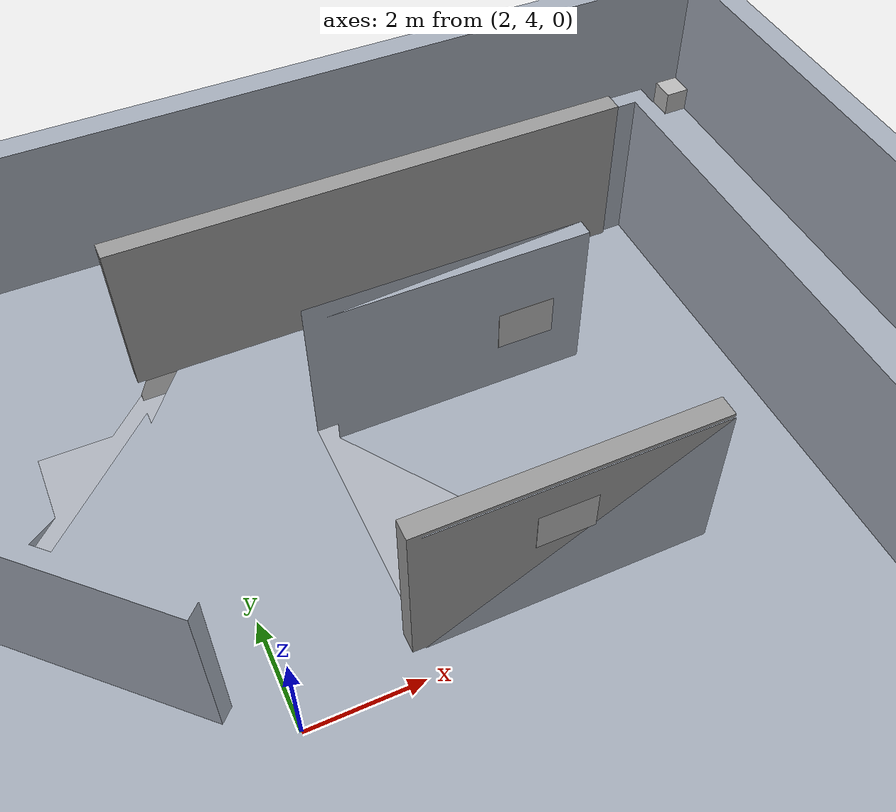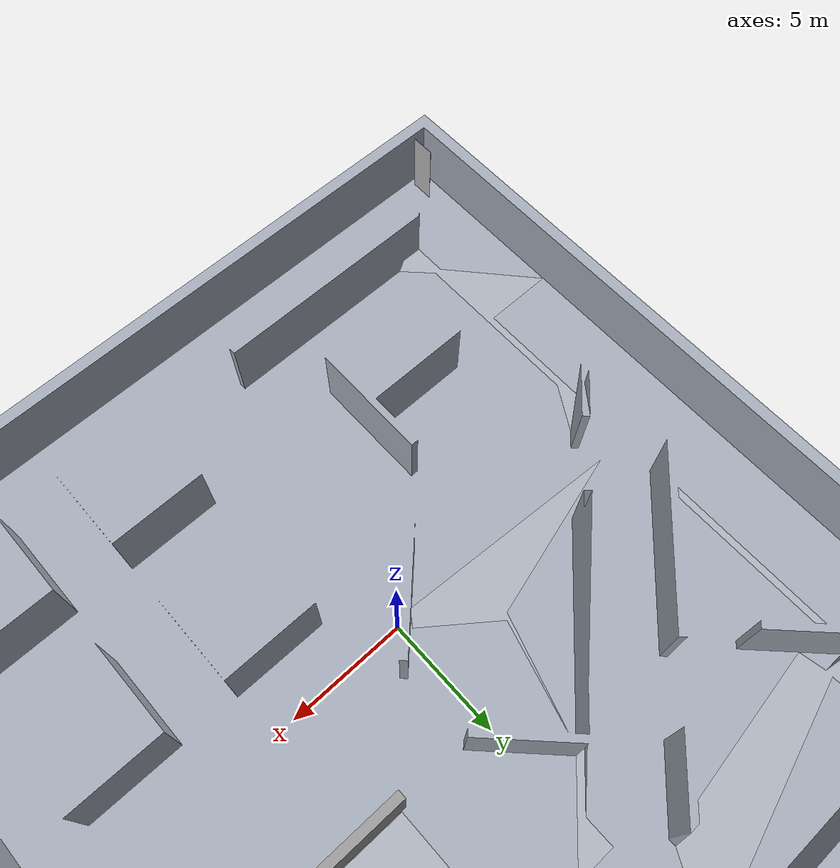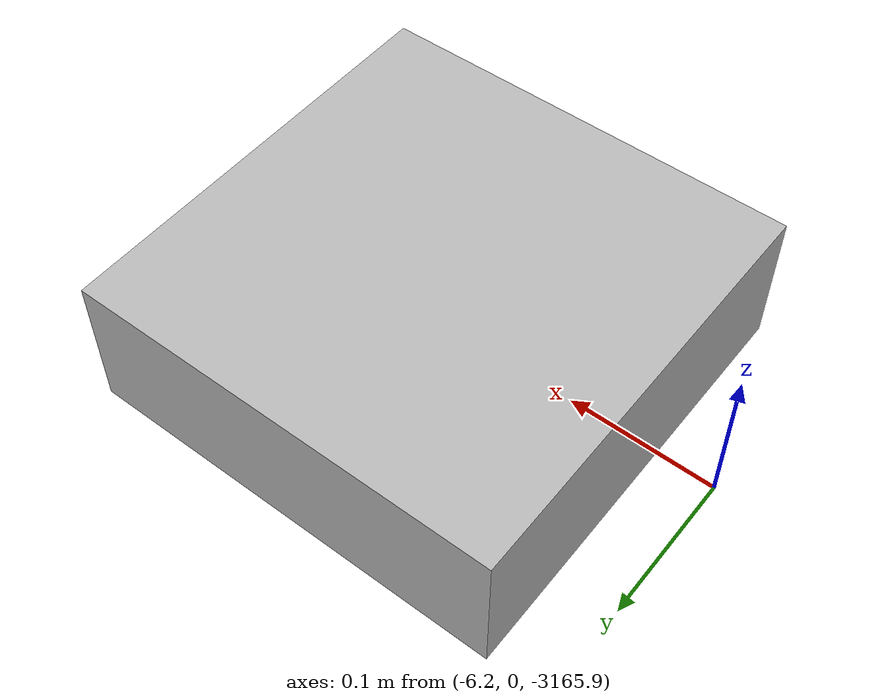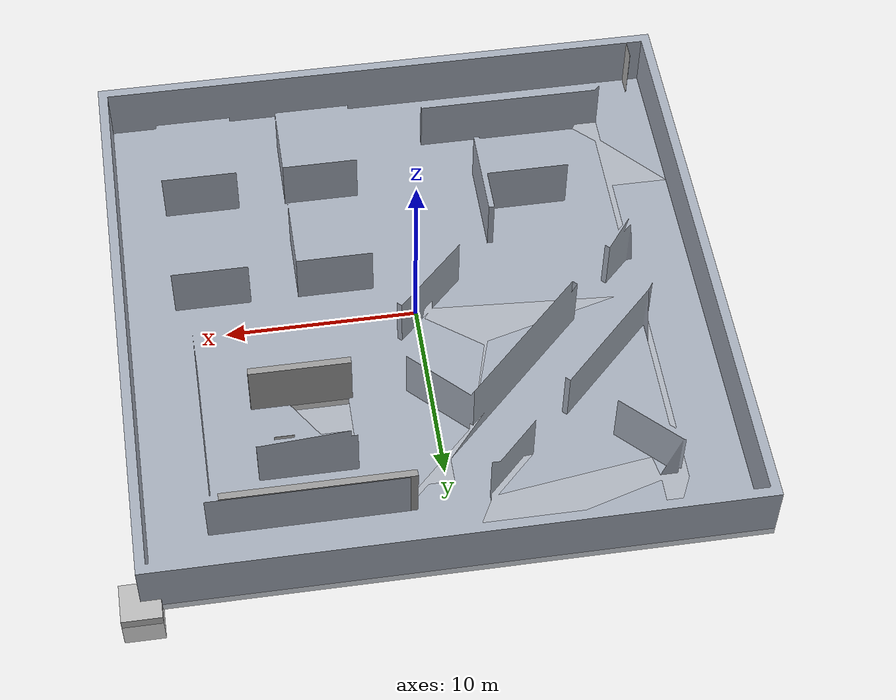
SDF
<sdf version="1.7">
 <world name="default">
  <light name="sun" type="directional">
   <pose>0 0 10 0 -0 0</pose>
   <diffuse>0.8 0.8 0.8 1</diffuse>
   <specular>0.2 0.2 0.2 1</specular>
   <attenuation>
    <range>1000</range>
    <constant>0.9</constant>
    <linear>0.01</linear>
    <quadratic>0.001</quadratic>
   </attenuation>
   <direction>-0.5 0.1 -0.9</direction>
   <spot><inner_angle>0</inner_angle><outer_angle>0</outer_angle><falloff>0</falloff></spot>
  </light>
  <model name="ground_plane">
   <static>1</static>
   <link name="link">
    <collision name="collision">
     <geometry><plane><normal>0 0 1</normal><size>100 100</size></plane></geometry>
     <surface>
      <contact><collide_bitmask>65535</collide_bitmask></contact>
      <friction><ode><mu>100</mu><mu2>50</mu2></ode></friction>
     </surface>
    </collision>
    <visual name="visual">
     <cast_shadows>0</cast_shadows>
     <geometry><plane><normal>0 0 1</normal><size>100 100</size></plane></geometry>
     <material>
      <script><uri>file://media/materials/scripts/gazebo.material</uri><name>Gazebo/Grey</name></script>
     </material>
    </visual>
   </link>
  </model>
  <model name="complex_office_map">
   <static>1</static>
   <pose>15.5 15.5 -0.5 0 0 -1.5708</pose>
   <link name="map_link">
    <visual name="map_visual">
     <geometry>
      <mesh>
       <uri>file:///root/catkin_ws/src/FALCON/uav_simulator/map_render/resource/untitled_v1.dae</uri>
       <scale>1 1 1</scale>
      </mesh>
     </geometry>
    </visual>
   </link>
  </model>
  <model name="gz_uav">
   <static>0</static>
   <link name="base_link">
    <visual name="body_vis"><geometry><box><size>0.3 0.3 0.1</size></box></geometry></visual>
    <sensor name="rgb_camera" type="camera">
     <always_on>1</always_on>
     <update_rate>15</update_rate>
     <camera>
      <horizontal_fov>1.047</horizontal_fov>
      <image><width>640</width><height>480</height><format>R8G8B8</format></image>
      <clip><near>0.05</near><far>50</far></clip>
     </camera>
     <plugin name="gazebo_ros_camera" filename="libgazebo_ros_camera.so">
      <cameraName>camera</cameraName>
      <frameName>camera_link</frameName>
      <imageTopicName>image_raw</imageTopicName>
      <cameraInfoTopicName>camera_info</cameraInfoTopicName>
     </plugin>
    </sensor>
    <inertial>
     <inertia><ixx>1</ixx><ixy>0</ixy><ixz>0</ixz><iyy>1</iyy><iyz>0</iyz><izz>1</izz></inertia>
     <mass>1</mass>
    </inertial>
   </link>
   <pose>-6 0 -3165.89 0 -0 0</pose>
  </model>
  <model name="poster2">
   <static>1</static>
   <link name="poster_link">
    <visual name="poster_visual">
     <geometry><box><size>0.01 1 0.75</size></box></geometry>
     <material>
      <script>
       <uri>file:///root/catkin_ws/src/gazebo/poster_plane 1/materials/scripts</uri>
       <uri>file:///root/catkin_ws/src/gazebo/poster_plane 1/materials/textures</uri>
       <name>Poster/Poster1</name>
      </script>
     </material>
    </visual>
   </link>
   <pose>6.5 4.5 2 0 -0 1.57</pose>
  </model>
  <model name="poster3">
   <static>1</static>
   <link name="poster_link">
    <visual name="poster_visual">
     <geometry><box><size>0.01 1 0.75</size></box></geometry>
     <material>
      <script>
       <uri>file:///root/catkin_ws/src/gazebo/poster_plane 2/materials/scripts</uri>
       <uri>file:///root/catkin_ws/src/gazebo/poster_plane 2/materials/textures</uri>
       <name>Poster/Poster2</name>
      </script>
     </material>
    </visual>
   </link>
   <pose>7.76 8.33 2 0 -0 1.57</pose>
  </model>
  <model name="poster4">
   <static>1</static>
   <link name="poster_link">
    <visual name="poster_visual">
     <geometry><box><size>0.01 1 3</size></box></geometry>
     <material>
      <script>
       <uri>file:///root/catkin_ws/src/gazebo/poster_plane 3/materials/scripts</uri>
       <uri>file:///root/catkin_ws/src/gazebo/poster_plane 3/materials/textures</uri>
       <name>Poster/Poster4</name>
      </script>
     </material>
    </visual>
   </link>
   <pose>-14 -14 2 0 -0 0</pose>
  </model>
  <gravity>0 0 -9.8</gravity>
  <magnetic_field>6e-06 2.3e-05 -4.2e-05</magnetic_field>
  <atmosphere type="adiabatic"/>
  <physics type="ode">
   <max_step_size>0.001</max_step_size>
   <real_time_factor>1</real_time_factor>
   <real_time_update_rate>1000</real_time_update_rate>
  </physics>
  <scene><ambient>0.4 0.4 0.4 1</ambient><background>0.7 0.7 0.7 1</background><shadows>1</shadows></scene>
  <spherical_coordinates>
   <surface_model>EARTH_WGS84</surface_model>
   <latitude_deg>0</latitude_deg>
   <longitude_deg>0</longitude_deg>
   <elevation>0</elevation>
   <heading_deg>0</heading_deg>
  </spherical_coordinates>
  <model name="fill_1">
   <link name="link">
    <inertial>
     <mass>9.71621</mass>
     <inertia><ixx>21.4582</ixx><ixy>0</ixy><ixz>0</ixz><iyy>43.3319</iyy><iyz>0</iyz><izz>22.0873</izz></inertia>
    </inertial>
    <pose>2.48752 -0.311056 -0 0 -0 0</pose>
    <visual name="visual">
     <geometry><box><size>5.21028 0.363123 5.13518</size></box></geometry>
     <material>
      <script><name>Gazebo/Grey</name><uri>file://media/materials/scripts/gazebo.material</uri></script>
      <shader type="pixel"/>
     </material>
    </visual>
    <collision name="collision">
     <geometry><box><size>5.21028 0.363123 5.13518</size></box></geometry>
     <surface>
      <friction>
       <ode><mu>1</mu><mu2>1</mu2><fdir1>0 0 0</fdir1><slip1>0</slip1><slip2>0</slip2></ode>
       <torsional>
        <coefficient>1</coefficient>
        <patch_radius>0</patch_radius>
        <surface_radius>0</surface_radius>
        <use_patch_radius>1</use_patch_radius>
        <ode><slip>0</slip></ode>
       </torsional>
      </friction>
      <bounce><restitution_coefficient>0</restitution_coefficient><threshold>1e+06</threshold></bounce>
      <contact>
       <collide_without_contact>0</collide_without_contact>
       <collide_without_contact_bitmask>1</collide_without_contact_bitmask>
       <collide_bitmask>1</collide_bitmask>
       <ode>
        <soft_cfm>0</soft_cfm>
        <soft_erp>0.2</soft_erp>
        <kp>1e+13</kp>
        <kd>1</kd>
        <max_vel>0.01</max_vel>
        <min_depth>0</min_depth>
       </ode>
       <bullet>
        <split_impulse>1</split_impulse>
        <split_impulse_penetration_threshold>-0.01</split_impulse_penetration_threshold>
        <soft_cfm>0</soft_cfm>
        <soft_erp>0.2</soft_erp>
        <kp>1e+13</kp>
        <kd>1</kd>
       </bullet>
      </contact>
     </surface>
    </collision>
   </link>
   <link name="link_clone">
    <inertial>
     <mass>18.0151</mass>
     <inertia><ixx>39.7862</ixx><ixy>0</ixy><ixz>0</ixz><iyy>179.694</iyy><iyz>0</iyz><izz>140.304</izz></inertia>
    </inertial>
    <pose>2.36536 6.80385 0 0 -0 0</pose>
    <visual name="visual">
     <geometry><box><size>9.66051 0.363123 5.13518</size></box></geometry>
     <material>
      <script><name>Gazebo/Grey</name><uri>file://media/materials/scripts/gazebo.material</uri></script>
      <shader type="pixel"/>
     </material>
    </visual>
    <collision name="collision">
     <geometry><box><size>9.66051 0.363123 5.13518</size></box></geometry>
     <surface>
      <friction>
       <ode><mu>1</mu><mu2>1</mu2><fdir1>0 0 0</fdir1><slip1>0</slip1><slip2>0</slip2></ode>
       <torsional>
        <coefficient>1</coefficient>
        <patch_radius>0</patch_radius>
        <surface_radius>0</surface_radius>
        <use_patch_radius>1</use_patch_radius>
        <ode><slip>0</slip></ode>
       </torsional>
      </friction>
      <bounce><restitution_coefficient>0</restitution_coefficient><threshold>1e+06</threshold></bounce>
      <contact>
       <collide_without_contact>0</collide_without_contact>
       <collide_without_contact_bitmask>1</collide_without_contact_bitmask>
       <collide_bitmask>1</collide_bitmask>
       <ode>
        <soft_cfm>0</soft_cfm>
        <soft_erp>0.2</soft_erp>
        <kp>1e+13</kp>
        <kd>1</kd>
        <max_vel>0.01</max_vel>
        <min_depth>0</min_depth>
       </ode>
       <bullet>
        <split_impulse>1</split_impulse>
        <split_impulse_penetration_threshold>-0.01</split_impulse_penetration_threshold>
        <soft_cfm>0</soft_cfm>
        <soft_erp>0.2</soft_erp>
        <kp>1e+13</kp>
        <kd>1</kd>
       </bullet>
      </contact>
     </surface>
    </collision>
   </link>
   <static>0</static>
   <pose>4.0993 5.00861 0.5 0 -0 0</pose>
  </model>
 </world>
</sdf>
